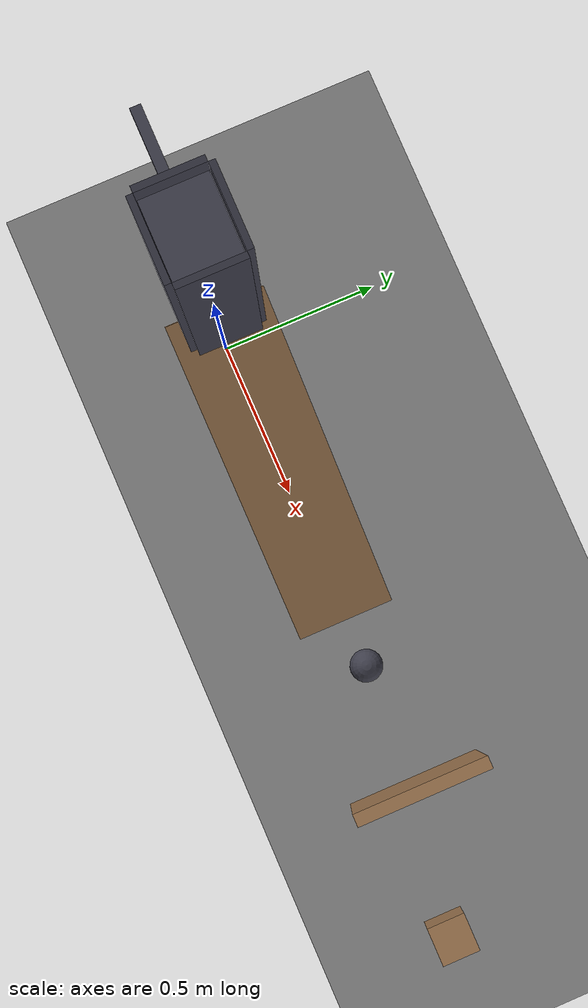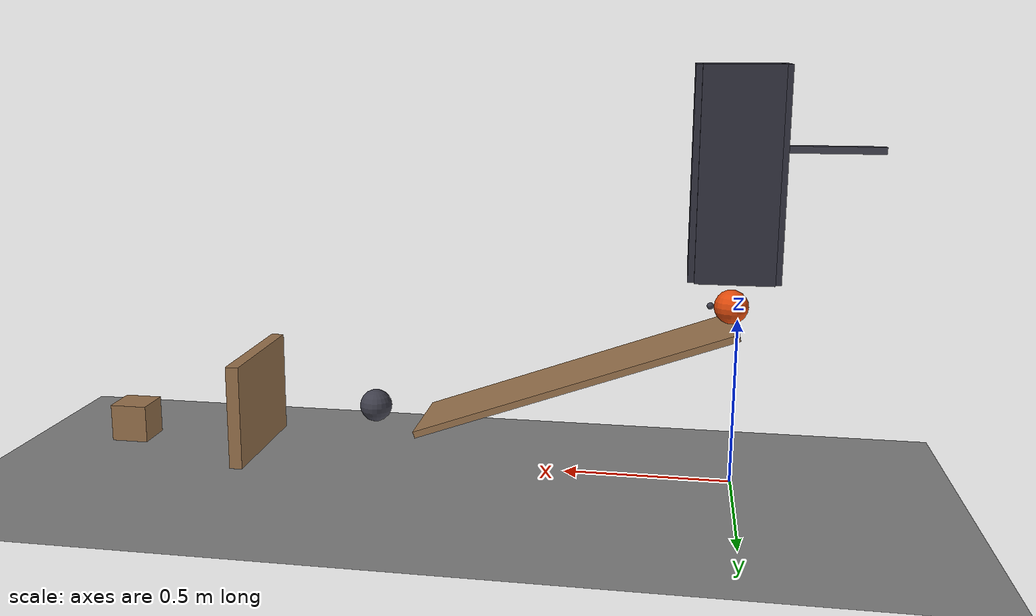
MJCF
<mujoco model="spring_cart_ramp_pendulum_and_door">
  <compiler angle="radian"/>
  <option timestep="0.002"/>
  <worldbody>
    <geom name="floor" type="plane" size="6 6 0.1" friction="0.68 0 0"/>
    <body name="ramp1">
      <geom name="ramp1" type="box" pos="0.469846 0 0.311613" size="0.5 0.15 0.01" euler="0 0.349066 0" friction="0.68 0 0" solref="0.01 1" rgba="0.6 0.45 0.3 1"/>
    </body>
    <body name="ball1" pos="0.0205212 0 0.539005">
      <freejoint/>
      <geom name="ball1" type="sphere" pos="0 0 0" size="0.05" mass="0.2" condim="6" friction="0.68 0 0" solref="0.01 1" rgba="0.9 0.3 0.05 1"/>
    </body>
    <body name="ball retainer" pos="0.240521 0 0.739005">
      <joint name="ball_retainer_hinge" type="hinge" pos="0 0 0" axis="0 1 0" limited="true" range="-1.39626 0" stiffness="1" springref="0.174533" damping="0.04"/>
      <geom name="ball retainer" type="sphere" pos="-0.16 0 -0.2" size="0.01" mass="0.01" friction="0.68 0 0" solref="0.01 1" rgba="0.25 0.25 0.3 1"/>
    </body>
    <body name="cart1" pos="0.0205212 0 1.139">
      <freejoint/>
      <geom name="cart1" type="box" pos="0 0 0" size="0.11 0.09 0.05" mass="0.5" friction="0.68 0 0" solref="0.01 1" rgba="0.25 0.25 0.3 1"/>
    </body>
    <body name="cart near guide">
      <geom name="cart near guide" type="box" pos="-0.100479 0 0.93" size="0.009 0.092 0.305" friction="0.68 0 0" solref="0.01 1" rgba="0.2 0.2 0.25 1"/>
    </body>
    <body name="cart far guide">
      <geom name="cart far guide" type="box" pos="0.141521 0 0.93" size="0.009 0.092 0.305" friction="0.68 0 0" solref="0.01 1" rgba="0.2 0.2 0.25 1"/>
    </body>
    <body name="cart left guide">
      <geom name="cart left guide" type="box" pos="0.0205212 0.101 0.93" size="0.112 0.009 0.305" friction="0.68 0 0" solref="0.01 1" rgba="0.2 0.2 0.25 1"/>
    </body>
    <body name="cart right guide">
      <geom name="cart right guide" type="box" pos="0.0205212 -0.101 0.93" size="0.112 0.009 0.305" friction="0.68 0 0" solref="0.01 1" rgba="0.2 0.2 0.25 1"/>
    </body>
    <body name="cart pusher arm" pos="-0.379479 0 0.999005">
      <joint name="cart_spring_hinge" type="hinge" pos="0 0 0" axis="0 1 0" limited="true" range="-0.463648 0" stiffness="3.6" springref="0" damping="0.04"/>
      <geom name="cart pusher arm" type="box" pos="0.223607 0 0" size="0.223607 0.015 0.01" mass="0.04" contype="0" conaffinity="0" rgba="0.25 0.25 0.3 1"/>
      <geom name="cart pusher tip" type="sphere" pos="0.447214 0 0" size="0.01" mass="0.01" friction="0.68 0 0" solref="0.01 1" rgba="0.25 0.25 0.3 1"/>
    </body>
    <body name="pendulum1" pos="1.09311 0 -0.32">
      <joint name="pendulum_hinge" type="hinge" pos="0 0 0" axis="0 1 0" limited="true" range="0 0.698132" damping="0.04"/>
      <geom name="pendulum1" type="sphere" pos="0 0 0.5" size="0.05" mass="0.35" friction="0.68 0 0" solref="0.01 1" rgba="0.25 0.25 0.3 1"/>
    </body>
    <body name="door1" pos="1.48351 -0.21 0.18">
      <joint name="door_hinge" type="hinge" pos="0 0 0" axis="0 0 1" limited="true" range="-1.22173 0" damping="0.04"/>
      <geom name="door1" type="box" pos="0 0.21 0" size="0.02 0.21 0.16" mass="0.45" friction="0.68 0 0" solref="0.01 1" rgba="0.6 0.45 0.3 1"/>
    </body>
    <body name="block1" pos="1.94402 -0.0851454 0.06">
      <freejoint/>
      <geom name="block1" type="box" pos="0 0 0" size="0.06 0.06 0.06" mass="0.35" friction="0.68 0 0" solref="0.01 1" rgba="0.6 0.45 0.3 1"/>
    </body>
  </worldbody>
  <keyframe>
    <key name="start" qpos="0.0205212 0 0.539005 1 0 0 0 0 0.0205212 0 1.139 1 0 0 0 -0.463648 0 0 1.94402 -0.0851454 0.06 1 0 0 0" qvel="0 0 0 0 0 0 0 0 0 0 0 0 0 0 0 0 0 0 0 0 0 0"/>
  </keyframe>
</mujoco>
